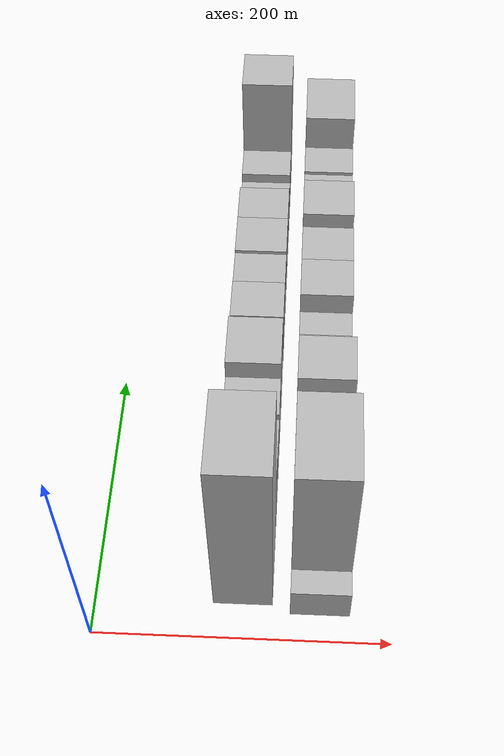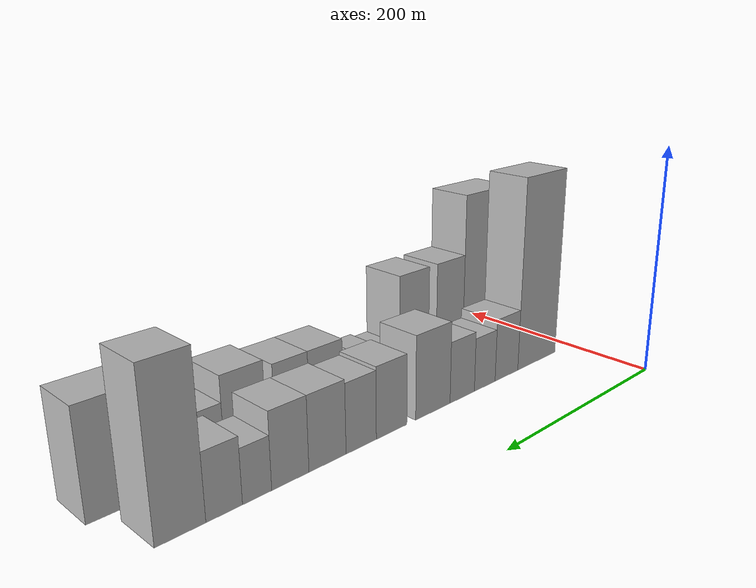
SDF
<sdf version="1.6">
 <world name="default">
  <model name="building_15">
   <static>1</static>
   <pose>100.0000 52.5941 0 0.000000 0.000000 0.000000</pose>
   <link name="link">
    <pose>0 0 87.00 0 0 0</pose>
    <collision name="collision"><geometry><box><size>40.0000 56.9795 174.0000</size></box></geometry></collision>
    <visual name="visual">
     <cast_shadows>0</cast_shadows>
     <geometry><box><size>40.0000 56.9795 174.0000</size></box></geometry>
     <material>
      <script>
       <uri>model://HANNAS_wall/materials/scripts</uri>
       <uri>model://HANNAS_wall/materials/textures</uri>
       <name>vrc/HANNAS_wall</name>
      </script>
     </material>
    </visual>
   </link>
  </model>
  <model name="building_16">
   <static>1</static>
   <pose>100.0000 97.2568 0 0.000000 0.000000 0.000000</pose>
   <link name="link">
    <pose>0 0 28.50 0 0 0</pose>
    <collision name="collision"><geometry><box><size>40.0000 32.3460 57.0000</size></box></geometry></collision>
    <visual name="visual">
     <cast_shadows>0</cast_shadows>
     <geometry><box><size>40.0000 32.3460 57.0000</size></box></geometry>
     <material>
      <script>
       <uri>model://HANNAS_wall/materials/scripts</uri>
       <uri>model://HANNAS_wall/materials/textures</uri>
       <name>vrc/HANNAS_wall</name>
      </script>
     </material>
    </visual>
   </link>
  </model>
  <model name="building_17">
   <static>1</static>
   <pose>100.0000 127.3956 0 0.000000 0.000000 0.000000</pose>
   <link name="link">
    <pose>0 0 24.00 0 0 0</pose>
    <collision name="collision"><geometry><box><size>40.0000 27.9316 48.0000</size></box></geometry></collision>
    <visual name="visual">
     <cast_shadows>0</cast_shadows>
     <geometry><box><size>40.0000 27.9316 48.0000</size></box></geometry>
     <material>
      <script>
       <uri>model://HANNAS_wall/materials/scripts</uri>
       <uri>model://HANNAS_wall/materials/textures</uri>
       <name>vrc/HANNAS_wall</name>
      </script>
     </material>
    </visual>
   </link>
  </model>
  <model name="building_18">
   <static>1</static>
   <pose>100.0000 156.8957 0 0.000000 0.000000 0.000000</pose>
   <link name="link">
    <pose>0 0 27.00 0 0 0</pose>
    <collision name="collision"><geometry><box><size>40.0000 31.0685 54.0000</size></box></geometry></collision>
    <visual name="visual">
     <cast_shadows>0</cast_shadows>
     <geometry><box><size>40.0000 31.0685 54.0000</size></box></geometry>
     <material>
      <script>
       <uri>model://HANNAS_wall/materials/scripts</uri>
       <uri>model://HANNAS_wall/materials/textures</uri>
       <name>vrc/HANNAS_wall</name>
      </script>
     </material>
    </visual>
   </link>
  </model>
  <model name="building_19">
   <static>1</static>
   <pose>100.0000 192.8929 0 0.000000 0.000000 0.000000</pose>
   <link name="link">
    <pose>0 0 36.00 0 0 0</pose>
    <collision name="collision"><geometry><box><size>40.0000 40.9259 72.0000</size></box></geometry></collision>
    <visual name="visual">
     <cast_shadows>0</cast_shadows>
     <geometry><box><size>40.0000 40.9259 72.0000</size></box></geometry>
     <material>
      <script>
       <uri>model://HANNAS_wall/materials/scripts</uri>
       <uri>model://HANNAS_wall/materials/textures</uri>
       <name>vrc/HANNAS_wall</name>
      </script>
     </material>
    </visual>
   </link>
  </model>
  <model name="building_20">
   <static>1</static>
   <pose>100.0000 239.9159 0 0.000000 0.000000 0.000000</pose>
   <link name="link">
    <pose>0 0 30.00 0 0 0</pose>
    <collision name="collision"><geometry><box><size>40.0000 33.1200 60.0000</size></box></geometry></collision>
    <visual name="visual">
     <cast_shadows>0</cast_shadows>
     <geometry><box><size>40.0000 33.1200 60.0000</size></box></geometry>
     <material>
      <script>
       <uri>model://HANNAS_wall/materials/scripts</uri>
       <uri>model://HANNAS_wall/materials/textures</uri>
       <name>vrc/HANNAS_wall</name>
      </script>
     </material>
    </visual>
   </link>
  </model>
  <model name="building_21">
   <static>1</static>
   <pose>100.0000 271.8289 0 0.000000 0.000000 0.000000</pose>
   <link name="link">
    <pose>0 0 28.50 0 0 0</pose>
    <collision name="collision"><geometry><box><size>40.0000 30.7061 57.0000</size></box></geometry></collision>
    <visual name="visual">
     <cast_shadows>0</cast_shadows>
     <geometry><box><size>40.0000 30.7061 57.0000</size></box></geometry>
     <material>
      <script>
       <uri>model://HANNAS_wall/materials/scripts</uri>
       <uri>model://HANNAS_wall/materials/textures</uri>
       <name>vrc/HANNAS_wall</name>
      </script>
     </material>
    </visual>
   </link>
  </model>
  <model name="building_22">
   <static>1</static>
   <pose>100.0000 304.7334 0 0.000000 0.000000 0.000000</pose>
   <link name="link">
    <pose>0 0 30.00 0 0 0</pose>
    <collision name="collision"><geometry><box><size>40.0000 35.1029 60.0000</size></box></geometry></collision>
    <visual name="visual">
     <cast_shadows>0</cast_shadows>
     <geometry><box><size>40.0000 35.1029 60.0000</size></box></geometry>
     <material>
      <script>
       <uri>model://HANNAS_wall/materials/scripts</uri>
       <uri>model://HANNAS_wall/materials/textures</uri>
       <name>vrc/HANNAS_wall</name>
      </script>
     </material>
    </visual>
   </link>
  </model>
  <model name="building_23">
   <static>1</static>
   <pose>100.0000 338.6224 0 0.000000 0.000000 0.000000</pose>
   <link name="link">
    <pose>0 0 30.00 0 0 0</pose>
    <collision name="collision"><geometry><box><size>40.0000 32.6751 60.0000</size></box></geometry></collision>
    <visual name="visual">
     <cast_shadows>0</cast_shadows>
     <geometry><box><size>40.0000 32.6751 60.0000</size></box></geometry>
     <material>
      <script>
       <uri>model://HANNAS_wall/materials/scripts</uri>
       <uri>model://HANNAS_wall/materials/textures</uri>
       <name>vrc/HANNAS_wall</name>
      </script>
     </material>
    </visual>
   </link>
  </model>
  <model name="building_24">
   <static>1</static>
   <pose>100.0000 366.9691 0 0.000000 0.000000 0.000000</pose>
   <link name="link">
    <pose>0 0 21.00 0 0 0</pose>
    <collision name="collision"><geometry><box><size>40.0000 24.0184 42.0000</size></box></geometry></collision>
    <visual name="visual">
     <cast_shadows>0</cast_shadows>
     <geometry><box><size>40.0000 24.0184 42.0000</size></box></geometry>
     <material>
      <script>
       <uri>model://HANNAS_wall/materials/scripts</uri>
       <uri>model://HANNAS_wall/materials/textures</uri>
       <name>vrc/HANNAS_wall</name>
      </script>
     </material>
    </visual>
   </link>
  </model>
  <model name="building_25">
   <static>1</static>
   <pose>100.0000 393.1067 0 0.000000 0.000000 0.000000</pose>
   <link name="link">
    <pose>0 0 25.50 0 0 0</pose>
    <collision name="collision"><geometry><box><size>40.0000 28.2567 51.0000</size></box></geometry></collision>
    <visual name="visual">
     <cast_shadows>0</cast_shadows>
     <geometry><box><size>40.0000 28.2567 51.0000</size></box></geometry>
     <material>
      <script>
       <uri>model://HANNAS_wall/materials/scripts</uri>
       <uri>model://HANNAS_wall/materials/textures</uri>
       <name>vrc/HANNAS_wall</name>
      </script>
     </material>
    </visual>
   </link>
  </model>
  <model name="building_26">
   <static>1</static>
   <pose>100.0000 425.6987 0 0.000000 0.000000 0.000000</pose>
   <link name="link">
    <pose>0 0 61.50 0 0 0</pose>
    <collision name="collision"><geometry><box><size>40.0000 36.9274 123.0000</size></box></geometry></collision>
    <visual name="visual">
     <cast_shadows>0</cast_shadows>
     <geometry><box><size>40.0000 36.9274 123.0000</size></box></geometry>
     <material>
      <script>
       <uri>model://HANNAS_wall/materials/scripts</uri>
       <uri>model://HANNAS_wall/materials/textures</uri>
       <name>vrc/HANNAS_wall</name>
      </script>
     </material>
    </visual>
   </link>
  </model>
  <model name="building_36">
   <static>1</static>
   <pose>152.0000 26.8539 0 0.000000 0.000000 0.000000</pose>
   <link name="link">
    <pose>0 0 16.50 0 0 0</pose>
    <collision name="collision"><geometry><box><size>40.0000 16.9517 33.0000</size></box></geometry></collision>
    <visual name="visual">
     <cast_shadows>0</cast_shadows>
     <geometry><box><size>40.0000 16.9517 33.0000</size></box></geometry>
     <material>
      <script>
       <uri>model://HANNAS_wall/materials/scripts</uri>
       <uri>model://HANNAS_wall/materials/textures</uri>
       <name>vrc/HANNAS_wall</name>
      </script>
     </material>
    </visual>
   </link>
  </model>
  <model name="building_37">
   <static>1</static>
   <pose>152.0000 65.6807 0 0.000000 0.000000 0.000000</pose>
   <link name="link">
    <pose>0 0 76.50 0 0 0</pose>
    <collision name="collision"><geometry><box><size>40.0000 60.7019 153.0000</size></box></geometry></collision>
    <visual name="visual">
     <cast_shadows>0</cast_shadows>
     <geometry><box><size>40.0000 60.7019 153.0000</size></box></geometry>
     <material>
      <script>
       <uri>model://HANNAS_wall/materials/scripts</uri>
       <uri>model://HANNAS_wall/materials/textures</uri>
       <name>vrc/HANNAS_wall</name>
      </script>
     </material>
    </visual>
   </link>
  </model>
  <model name="building_38">
   <static>1</static>
   <pose>152.0000 114.2111 0 0.000000 0.000000 0.000000</pose>
   <link name="link">
    <pose>0 0 49.50 0 0 0</pose>
    <collision name="collision"><geometry><box><size>40.0000 36.3589 99.0000</size></box></geometry></collision>
    <visual name="visual">
     <cast_shadows>0</cast_shadows>
     <geometry><box><size>40.0000 36.3589 99.0000</size></box></geometry>
     <material>
      <script>
       <uri>model://HANNAS_wall/materials/scripts</uri>
       <uri>model://HANNAS_wall/materials/textures</uri>
       <name>vrc/HANNAS_wall</name>
      </script>
     </material>
    </visual>
   </link>
  </model>
  <model name="building_39">
   <static>1</static>
   <pose>152.0000 160.4192 0 0.000000 0.000000 0.000000</pose>
   <link name="link">
    <pose>0 0 49.50 0 0 0</pose>
    <collision name="collision"><geometry><box><size>40.0000 36.0573 99.0000</size></box></geometry></collision>
    <visual name="visual">
     <cast_shadows>0</cast_shadows>
     <geometry><box><size>40.0000 36.0573 99.0000</size></box></geometry>
     <material>
      <script>
       <uri>model://HANNAS_wall/materials/scripts</uri>
       <uri>model://HANNAS_wall/materials/textures</uri>
       <name>vrc/HANNAS_wall</name>
      </script>
     </material>
    </visual>
   </link>
  </model>
  <model name="building_40">
   <static>1</static>
   <pose>152.0000 188.2636 0 0.000000 0.000000 0.000000</pose>
   <link name="link">
    <pose>0 0 19.50 0 0 0</pose>
    <collision name="collision"><geometry><box><size>40.0000 19.6315 39.0000</size></box></geometry></collision>
    <visual name="visual">
     <cast_shadows>0</cast_shadows>
     <geometry><box><size>40.0000 19.6315 39.0000</size></box></geometry>
     <material>
      <script>
       <uri>model://HANNAS_wall/materials/scripts</uri>
       <uri>model://HANNAS_wall/materials/textures</uri>
       <name>vrc/HANNAS_wall</name>
      </script>
     </material>
    </visual>
   </link>
  </model>
  <model name="building_41">
   <static>1</static>
   <pose>152.0000 209.8251 0 0.000000 0.000000 0.000000</pose>
   <link name="link">
    <pose>0 0 21.00 0 0 0</pose>
    <collision name="collision"><geometry><box><size>40.0000 23.4914 42.0000</size></box></geometry></collision>
    <visual name="visual">
     <cast_shadows>0</cast_shadows>
     <geometry><box><size>40.0000 23.4914 42.0000</size></box></geometry>
     <material>
      <script>
       <uri>model://HANNAS_wall/materials/scripts</uri>
       <uri>model://HANNAS_wall/materials/textures</uri>
       <name>vrc/HANNAS_wall</name>
      </script>
     </material>
    </visual>
   </link>
  </model>
  <model name="building_42">
   <static>1</static>
   <pose>152.0000 232.3250 0 0.000000 0.000000 0.000000</pose>
   <link name="link">
    <pose>0 0 21.00 0 0 0</pose>
    <collision name="collision"><geometry><box><size>40.0000 21.5085 42.0000</size></box></geometry></collision>
    <visual name="visual">
     <cast_shadows>0</cast_shadows>
     <geometry><box><size>40.0000 21.5085 42.0000</size></box></geometry>
     <material>
      <script>
       <uri>model://HANNAS_wall/materials/scripts</uri>
       <uri>model://HANNAS_wall/materials/textures</uri>
       <name>vrc/HANNAS_wall</name>
      </script>
     </material>
    </visual>
   </link>
  </model>
  <model name="building_43">
   <static>1</static>
   <pose>152.0000 260.5982 0 0.000000 0.000000 0.000000</pose>
   <link name="link">
    <pose>0 0 31.50 0 0 0</pose>
    <collision name="collision"><geometry><box><size>40.0000 35.0378 63.0000</size></box></geometry></collision>
    <visual name="visual">
     <cast_shadows>0</cast_shadows>
     <geometry><box><size>40.0000 35.0378 63.0000</size></box></geometry>
     <material>
      <script>
       <uri>model://HANNAS_wall/materials/scripts</uri>
       <uri>model://HANNAS_wall/materials/textures</uri>
       <name>vrc/HANNAS_wall</name>
      </script>
     </material>
    </visual>
   </link>
  </model>
  <model name="building_44">
   <static>1</static>
   <pose>152.0000 294.7860 0 0.000000 0.000000 0.000000</pose>
   <link name="link">
    <pose>0 0 31.50 0 0 0</pose>
    <collision name="collision"><geometry><box><size>40.0000 33.3378 63.0000</size></box></geometry></collision>
    <visual name="visual">
     <cast_shadows>0</cast_shadows>
     <geometry><box><size>40.0000 33.3378 63.0000</size></box></geometry>
     <material>
      <script>
       <uri>model://HANNAS_wall/materials/scripts</uri>
       <uri>model://HANNAS_wall/materials/textures</uri>
       <name>vrc/HANNAS_wall</name>
      </script>
     </material>
    </visual>
   </link>
  </model>
  <model name="building_45">
   <static>1</static>
   <pose>152.0000 338.0485 0 0.000000 0.000000 0.000000</pose>
   <link name="link">
    <pose>0 0 34.50 0 0 0</pose>
    <collision name="collision"><geometry><box><size>40.0000 37.1873 69.0000</size></box></geometry></collision>
    <visual name="visual">
     <cast_shadows>0</cast_shadows>
     <geometry><box><size>40.0000 37.1873 69.0000</size></box></geometry>
     <material>
      <script>
       <uri>model://HANNAS_wall/materials/scripts</uri>
       <uri>model://HANNAS_wall/materials/textures</uri>
       <name>vrc/HANNAS_wall</name>
      </script>
     </material>
    </visual>
   </link>
  </model>
  <model name="building_46">
   <static>1</static>
   <pose>152.0000 370.3069 0 0.000000 0.000000 0.000000</pose>
   <link name="link">
    <pose>0 0 24.00 0 0 0</pose>
    <collision name="collision"><geometry><box><size>40.0000 27.3295 48.0000</size></box></geometry></collision>
    <visual name="visual">
     <cast_shadows>0</cast_shadows>
     <geometry><box><size>40.0000 27.3295 48.0000</size></box></geometry>
     <material>
      <script>
       <uri>model://HANNAS_wall/materials/scripts</uri>
       <uri>model://HANNAS_wall/materials/textures</uri>
       <name>vrc/HANNAS_wall</name>
      </script>
     </material>
    </visual>
   </link>
  </model>
  <model name="building_47">
   <static>1</static>
   <pose>152.0000 398.4490 0 0.000000 0.000000 0.000000</pose>
   <link name="link">
    <pose>0 0 25.50 0 0 0</pose>
    <collision name="collision"><geometry><box><size>40.0000 28.9546 51.0000</size></box></geometry></collision>
    <visual name="visual">
     <cast_shadows>0</cast_shadows>
     <geometry><box><size>40.0000 28.9546 51.0000</size></box></geometry>
     <material>
      <script>
       <uri>model://HANNAS_wall/materials/scripts</uri>
       <uri>model://HANNAS_wall/materials/textures</uri>
       <name>vrc/HANNAS_wall</name>
      </script>
     </material>
    </visual>
   </link>
  </model>
  <model name="building_48">
   <static>1</static>
   <pose>152.0000 437.6552 0 0.000000 0.000000 0.000000</pose>
   <link name="link">
    <pose>0 0 42.00 0 0 0</pose>
    <collision name="collision"><geometry><box><size>40.0000 49.4577 84.0000</size></box></geometry></collision>
    <visual name="visual">
     <cast_shadows>0</cast_shadows>
     <geometry><box><size>40.0000 49.4577 84.0000</size></box></geometry>
     <material>
      <script>
       <uri>model://HANNAS_wall/materials/scripts</uri>
       <uri>model://HANNAS_wall/materials/textures</uri>
       <name>vrc/HANNAS_wall</name>
      </script>
     </material>
    </visual>
   </link>
  </model>
 </world>
</sdf>
